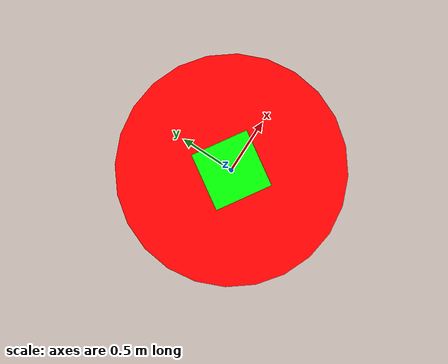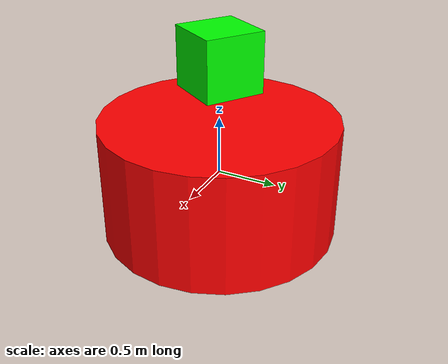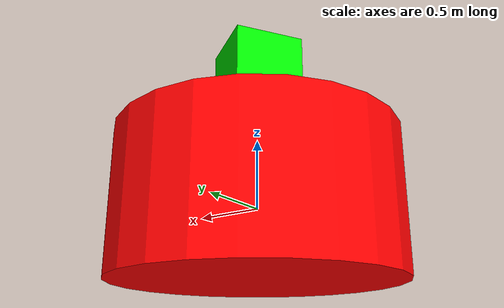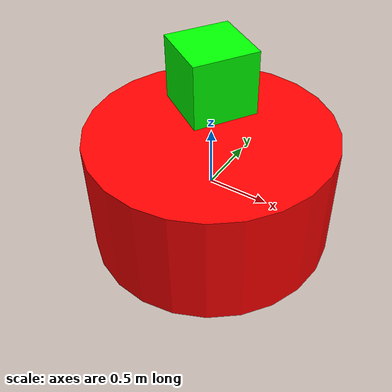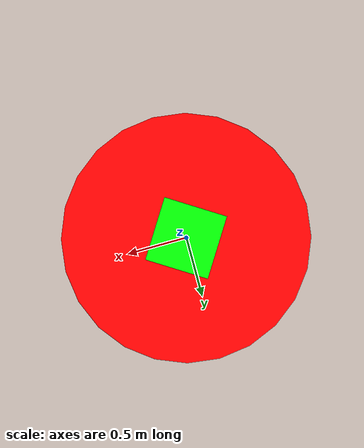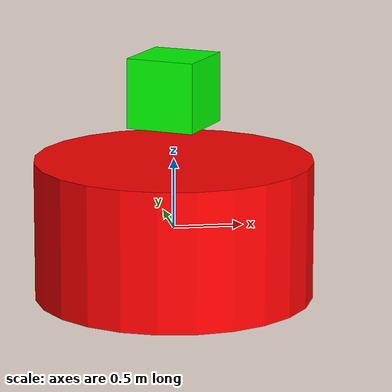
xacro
<?xml version="1.0"?>
<robot xmlns:xacro="http://www.ros.org/wiki/xacro" name="t1bot">
    <link name="base_link">
        <visual>
            <origin xyz="0.0 0.0 0.0" rpy="0.0 0.0 0.0" />
            <geometry>
                <cylinder radius="1.0" length="1.0" />
            </geometry>
            <material name="red">
                <color rgba="1.0 0.0 0.0 1.0" />
            </material>
        </visual>
        <collision>
            <origin xyz="0.0 0.0 0.0" rpy="0.0 0.0 0.0" />
            <geometry>
                <cylinder radius="1.0" length="1.0" />
            </geometry>
        </collision>
        <inertial>
            <origin xyz="0 0 0" rpy="0 0 0" />
            <mass value="1.0" />
            <inertia ixx="0.1" ixy="0.0" ixz="0.0" iyy="0.1" iyz="0.0" izz="0.1" />
        </inertial>
    </link>
    <link name="link1">
        <visual>
            <origin xyz="0.0 0.0 0.0" rpy="0.0 0.0 1.0" />
            <geometry>
                <box size="0.5 0.5 0.5" />
            </geometry>
            <material name="y">
                <color rgba="0.0 1.0 0.0 1.0" />
            </material>
        </visual>
        <collision>
            <origin xyz="0.0 0.0 0.0" rpy="0.0 0.0 1.0" />
            <geometry>
                <box size="0.5 0.5 0.5" />
            </geometry>
        </collision>
        <inertial>
            <origin xyz="0 0 0" rpy="0 0 0" />
            <mass value="1.0" />
            <inertia ixx="0.1" ixy="0.0" ixz="0.0" iyy="0.1" iyz="0.0" izz="0.1" />
        </inertial>
    </link>
    <joint name="joint1" type="continuous">
        <parent link="base_link" />
        <child link="link1" />
        <origin xyz="0 0 1" rpy="0 0 0" />
        <axis xyz="0 0 1" />
    </joint>
</robot>
